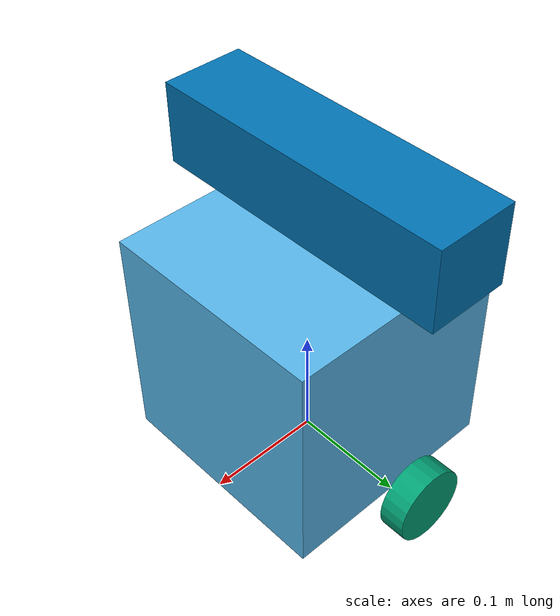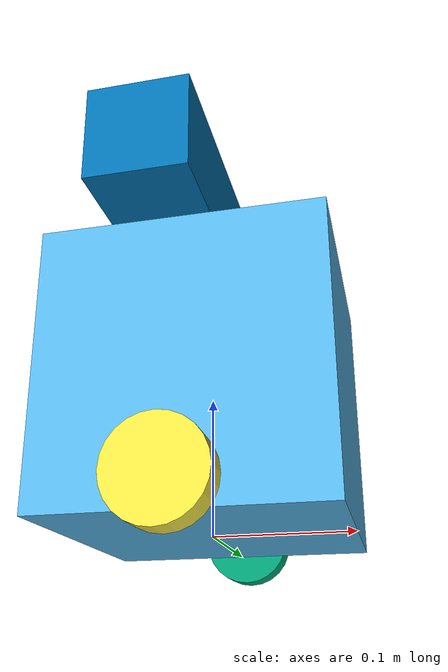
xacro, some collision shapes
<?xml version="1.0"?>
<robot name="hailfire">
  <!-- Included URDF Files -->
  <include filename="$(find hailfire_description)/urdf/hailfire_body.urdf.xacro"/>
  <include filename="$(find hailfire_description)/urdf/hailfire_calibration.xacro"/>
  <include filename="$(find hailfire_description)/urdf/asus_xtion_pro.urdf.xacro"/>

  <!-- Body of Hailfire robot, with wheels -->
  <hailfire_body/>

  <!-- ASUS Xtion PRO frames and mounting -->
  <hailfire_xtion_pro/>
</robot>

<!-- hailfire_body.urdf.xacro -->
<robot xmlns:xacro="http://ros.org/wiki/xacro" name="hailfire_hardware">

  <!-- Macro for Hailfire body, without Xtion Pro -->

  <property name="M_PI" value="3.14159"/>
  <property name="base_x" value="0.2"/>
  <property name="base_y" value="0.2"/>
  <property name="base_z" value="0.2"/>
  <property name="wheel_r" value="0.033"/>
  <property name="wheel_h" value="0.023"/>
  <property name="wheel_z" value="0.015"/>
  <property name="wheel_track" value="0.26"/>

  <xacro:macro name="hailfire_body">

    <!-- base_footprint is a fictitious link(frame) that is on the ground right below base_link origin, navigation stack depends on this frame -->
    <link name="base_footprint">
      <visual>
        <origin xyz="0 0 0" rpy="0 0 0"/>
        <geometry>
          <box size="0.001 0.001 0.001"/>
        </geometry>
        <material name="Green">
          <color rgba="0 0.8 0 1"/>
        </material>
      </visual>
      <collision>
        <origin xyz="0 0 0" rpy="0 0 0"/>
        <geometry>
          <box size="0.001 0.001 0.001"/>
        </geometry>
      </collision>
    </link>

    <link name="base_link">
      <inertial>
        <mass value="2"/>
        <origin xyz="0 0 0"/>
        <inertia ixx="0.01" ixy="0" ixz="0" iyy="0.01" iyz="0" izz="0.5"/>
      </inertial>
      <visual>
        <origin xyz="0 0 ${base_z/2}" rpy="0 0 0"/>
        <geometry>
          <box size="${base_x} ${base_y} ${base_z}"/>
        </geometry>
      </visual>
      <collision>
        <origin xyz="0 0 ${base_z/2}" rpy="0 0 0"/>
        <geometry>
          <box size="${base_x} ${base_y} ${base_z}"/>
        </geometry>
      </collision>
    </link>

    <joint name="base_footprint_joint" type="fixed">
      <origin xyz="0 0 0" rpy="0 0 0"/>
      <parent link="base_footprint"/>
      <child link="base_link"/>
    </joint>

    <link name="left_wheel_link">
      <inertial>
        <origin xyz="0 0 0"/>
        <mass value="0.01"/>
        <inertia ixx="0.001" ixy="0" ixz="0" iyy="0.001" iyz="0" izz="0.001"/>
      </inertial>
      <visual>
        <origin xyz="0 0 0" rpy="0 ${M_PI/2} ${M_PI/2}"/>
        <geometry>
          <cylinder radius="${wheel_r}" length="${wheel_h}"/>
        </geometry>
      </visual>
      <collision>
        <origin xyz="0 0 0" rpy="0 ${M_PI/2} ${M_PI/2}"/>
        <geometry>
          <cylinder radius="${wheel_r}" length="${wheel_h}"/>
        </geometry>
      </collision>
    </link>

    <joint name="left_wheel_joint" type="continuous">
      <origin xyz="0 ${wheel_track/2} ${wheel_z}" rpy="0 0 0"/>
      <parent link="base_link"/>
      <child link="left_wheel_link"/>
      <axis xyz="0 1 0"/>
    </joint>

    <link name="right_wheel_link">
      <inertial>
        <origin xyz="0 0 0"/>
        <mass value="0.01"/>
        <inertia ixx="0.001" ixy="0" ixz="0" iyy="0.001" iyz="0" izz="0.001"/>
      </inertial>
      <visual>
        <origin xyz="0 0 0" rpy="0 ${M_PI/2} ${M_PI/2}"/>
        <geometry>
          <cylinder radius="${wheel_r}" length="${wheel_h}"/>
        </geometry>
      </visual>
      <collision>
        <origin xyz="0 0 0" rpy="0 ${M_PI/2} ${M_PI/2}"/>
        <geometry>
          <cylinder radius="${wheel_r}" length="${wheel_h}"/>
        </geometry>
      </collision>
    </link>

    <joint name="right_wheel_joint" type="continuous">
      <origin xyz="0 ${-wheel_track/2} ${wheel_z}" rpy="0 0 0"/>
      <parent link="base_link"/>
      <child link="right_wheel_link"/>
      <axis xyz="0 1 0"/>
    </joint>
  </xacro:macro>
</robot>

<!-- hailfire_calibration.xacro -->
<robot>
  <property name="hailfire_calib_cam_x" value="-0.02"/>
  <property name="hailfire_calib_cam_y" value="0"/>
  <property name="hailfire_calib_cam_z" value="0.25"/>
  <property name="hailfire_calib_cam_rr" value="0"/>
  <property name="hailfire_calib_cam_rp" value="0"/>
  <property name="hailfire_calib_cam_ry" value="0"/>
  <property name="hailfire_camera_parent_name" value="base_link"/>
</robot>

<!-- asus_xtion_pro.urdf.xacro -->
<robot xmlns:xacro="http://ros.org/wiki/xacro" name="hailfire_hardware">
  <property name="M_PI" value="3.14159"/>

  <include filename="$(find hailfire_description)/urdf/hailfire_calibration.xacro"/>

  <!-- Macro for ASUS Xtion PRO on Hailfire. Uses Kinect frame names, but they have moved -->
  <xacro:macro name="hailfire_xtion_pro">

    <joint name="base_camera_joint" type="fixed">
      <origin xyz="${hailfire_calib_cam_x} ${hailfire_calib_cam_y} ${hailfire_calib_cam_z}" rpy="${hailfire_calib_cam_rr} ${hailfire_calib_cam_rp} ${hailfire_calib_cam_ry}"/>
      <parent link="${hailfire_camera_parent_name}"/>
      <child link="camera_link"/>
    </joint>

    <link name="camera_link">
      <inertial>
        <mass value="0.01"/>
        <origin xyz="0 0 0"/>
        <inertia ixx="0.001" ixy="0.0" ixz="0.0" iyy="0.001" iyz="0.0" izz="0.001"/>
      </inertial>
      <visual>
        <origin xyz=" 0 0 0 " rpy="0 0 0"/>
        <geometry>
          <mesh filename="package://hailfire_description/meshes/kinect.dae"/>
        </geometry>
      </visual>
      <collision>
        <origin xyz="0.0 0.0 0.0" rpy="0 0 0"/>
        <geometry>
          <box size="0.0730 .2760 0.0720"/>
        </geometry>
      </collision>
    </link>

    <joint name="camera_depth_joint" type="fixed">
      <origin xyz="0 0.049 0" rpy="0 0 0"/>
      <parent link="camera_link"/>
      <child link="camera_depth_frame"/>
    </joint>

    <link name="camera_depth_frame">
      <inertial>
        <mass value="0.01"/>
        <origin xyz="0 0 0"/>
        <inertia ixx="0.001" ixy="0.0" ixz="0.0" iyy="0.001" iyz="0.0" izz="0.001"/>
      </inertial>
    </link>

    <joint name="camera_depth_optical_joint" type="fixed">
      <origin xyz="0 0 0" rpy="${-M_PI/2} 0 ${-M_PI/2}"/>
      <parent link="camera_depth_frame"/>
      <child link="camera_depth_optical_frame"/>
    </joint>

    <link name="camera_depth_optical_frame">
      <inertial>
        <mass value="0.001"/>
        <origin xyz="0 0 0"/>
        <inertia ixx="0.0001" ixy="0.0" ixz="0.0" iyy="0.0001" iyz="0.0" izz="0.0001"/>
      </inertial>
    </link>

    <joint name="camera_rgb_joint" type="fixed">
      <origin xyz="0 0.022 0" rpy="0 0 0"/>
      <parent link="camera_link"/>
      <child link="camera_rgb_frame"/>
    </joint>

    <link name="camera_rgb_frame">
      <inertial>
        <mass value="0.001"/>
        <origin xyz="0 0 0"/>
        <inertia ixx="0.0001" ixy="0.0" ixz="0.0" iyy="0.0001" iyz="0.0" izz="0.0001"/>
      </inertial>
    </link>

    <joint name="camera_rgb_optical_joint" type="fixed">
      <origin xyz="0 0 0" rpy="${-M_PI/2} 0 ${-M_PI/2}"/>
      <parent link="camera_rgb_frame"/>
      <child link="camera_rgb_optical_frame"/>
    </joint>

    <link name="camera_rgb_optical_frame">
      <inertial>
        <mass value="0.001"/>
        <origin xyz="0 0 0"/>
        <inertia ixx="0.0001" ixy="0.0" ixz="0.0" iyy="0.0001" iyz="0.0" izz="0.0001"/>
      </inertial>
    </link>
  </xacro:macro>
</robot>
